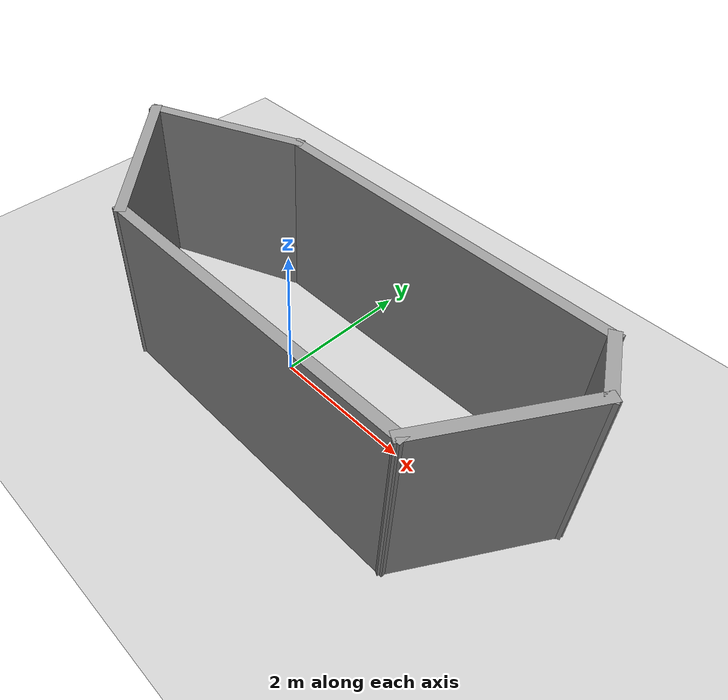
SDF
<sdf version="1.6">
 <world name="default">
  <light name="sun" type="directional">
   <pose>0 0 10 0 -0 0</pose>
   <diffuse>0.8 0.8 0.8 1</diffuse>
   <specular>0.2 0.2 0.2 1</specular>
   <attenuation>
    <range>1000</range>
    <constant>0.9</constant>
    <linear>0.01</linear>
    <quadratic>0.001</quadratic>
   </attenuation>
   <direction>-0.5 0.1 -0.9</direction>
  </light>
  <model name="ground_plane">
   <static>1</static>
   <link name="link">
    <collision name="collision">
     <geometry><plane><normal>0 0 1</normal><size>100 100</size></plane></geometry>
     <surface>
      <contact><collide_bitmask>65535</collide_bitmask></contact>
      <friction><ode><mu>100</mu><mu2>50</mu2></ode></friction>
     </surface>
    </collision>
    <visual name="visual">
     <cast_shadows>0</cast_shadows>
     <geometry><plane><normal>0 0 1</normal><size>100 100</size></plane></geometry>
     <material>
      <script><uri>file://media/materials/scripts/gazebo.material</uri><name>Gazebo/Grey</name></script>
     </material>
    </visual>
   </link>
  </model>
  <gravity>0 0 -9.8</gravity>
  <magnetic_field>6e-06 2.3e-05 -4.2e-05</magnetic_field>
  <atmosphere type="adiabatic"/>
  <physics name="default_physics" default="0" type="ode">
   <max_step_size>0.001</max_step_size>
   <real_time_factor>1</real_time_factor>
   <real_time_update_rate>1000</real_time_update_rate>
  </physics>
  <scene><ambient>0.4 0.4 0.4 1</ambient><background>0.7 0.7 0.7 1</background><shadows>1</shadows></scene>
  <audio><device>default</device></audio>
  <spherical_coordinates>
   <surface_model>EARTH_WGS84</surface_model>
   <latitude_deg>0</latitude_deg>
   <longitude_deg>0</longitude_deg>
   <elevation>0</elevation>
   <heading_deg>0</heading_deg>
  </spherical_coordinates>
  <model name="oldworld">
   <pose>0.347934 0.023967 0 0 -0 0</pose>
   <link name="Wall_0">
    <collision name="Wall_0_Collision">
     <geometry><box><size>2.5 0.15 2.5</size></box></geometry>
     <pose>0 0 1.25 0 -0 0</pose>
    </collision>
    <visual name="Wall_0_Visual">
     <pose>0 0 1.25 0 -0 0</pose>
     <geometry><box><size>2.5 0.15 2.5</size></box></geometry>
     <material>
      <script><uri>file://media/materials/scripts/gazebo.material</uri><name>Gazebo/Grey</name></script>
      <ambient>1 1 1 1</ambient>
     </material>
     <meta><layer>0</layer></meta>
    </visual>
    <pose>-2.82319 -0.44473 0 0 -0 -0.785398</pose>
   </link>
   <link name="Wall_1">
    <collision name="Wall_1_Collision">
     <geometry><box><size>4.75 0.15 2.5</size></box></geometry>
     <pose>0 0 1.25 0 -0 0</pose>
    </collision>
    <visual name="Wall_1_Visual">
     <pose>0 0 1.25 0 -0 0</pose>
     <geometry><box><size>4.75 0.15 2.5</size></box></geometry>
     <material>
      <script><uri>file://media/materials/scripts/gazebo.material</uri><name>Gazebo/Grey</name></script>
      <ambient>1 1 1 1</ambient>
     </material>
     <meta><layer>0</layer></meta>
    </visual>
    <pose>0.307657 -1.27558 0 0 -0 0</pose>
   </link>
   <link name="Wall_2">
    <collision name="Wall_2_Collision">
     <geometry><box><size>2.25 0.15 2.5</size></box></geometry>
     <pose>0 0 1.25 0 -0 0</pose>
    </collision>
    <visual name="Wall_2_Visual">
     <pose>0 0 1.25 0 -0 0</pose>
     <geometry><box><size>2.25 0.15 2.5</size></box></geometry>
     <material>
      <script><uri>file://media/materials/scripts/gazebo.material</uri><name>Gazebo/Grey</name></script>
      <ambient>1 1 1 1</ambient>
     </material>
     <meta><layer>0</layer></meta>
    </visual>
    <pose>3.13266 -0.366254 0 0 -0 1.0472</pose>
   </link>
   <link name="Wall_3">
    <collision name="Wall_3_Collision">
     <geometry><box><size>1 0.15 2.5</size></box></geometry>
     <pose>0 0 1.25 0 -0 0</pose>
    </collision>
    <visual name="Wall_3_Visual">
     <pose>0 0 1.25 0 -0 0</pose>
     <geometry><box><size>1 0.15 2.5</size></box></geometry>
     <material>
      <script><uri>file://media/materials/scripts/gazebo.material</uri><name>Gazebo/Grey</name></script>
      <ambient>1 1 1 1</ambient>
     </material>
     <meta><layer>0</layer></meta>
    </visual>
    <pose>3.44516 0.911134 0 0 -0 2.0944</pose>
   </link>
   <link name="Wall_4">
    <collision name="Wall_4_Collision">
     <geometry><box><size>5 0.15 2.5</size></box></geometry>
     <pose>0 0 1.25 0 -0 0</pose>
    </collision>
    <visual name="Wall_4_Visual">
     <pose>0 0 1.25 0 -0 0</pose>
     <geometry><box><size>5 0.15 2.5</size></box></geometry>
     <material>
      <script><uri>file://media/materials/scripts/gazebo.material</uri><name>Gazebo/Grey</name></script>
      <ambient>1 1 1 1</ambient>
     </material>
     <meta><layer>0</layer></meta>
    </visual>
    <pose>0.807657 1.2792 0 0 -0 3.14159</pose>
   </link>
   <link name="Wall_5">
    <collision name="Wall_5_Collision">
     <geometry><box><size>2.3739 0.15 2.5</size></box></geometry>
     <pose>0 0 1.25 0 -0 0</pose>
    </collision>
    <visual name="Wall_5_Visual">
     <pose>0 0 1.25 0 -0 0</pose>
     <geometry><box><size>2.3739 0.15 2.5</size></box></geometry>
     <material>
      <script><uri>file://media/materials/scripts/gazebo.material</uri><name>Gazebo/Grey</name></script>
      <ambient>1 1 1 1</ambient>
     </material>
     <meta><layer>0</layer></meta>
    </visual>
    <pose>-2.63569 0.832658 0 0 -0 -2.72835</pose>
   </link>
   <static>1</static>
  </model>
 </world>
</sdf>
